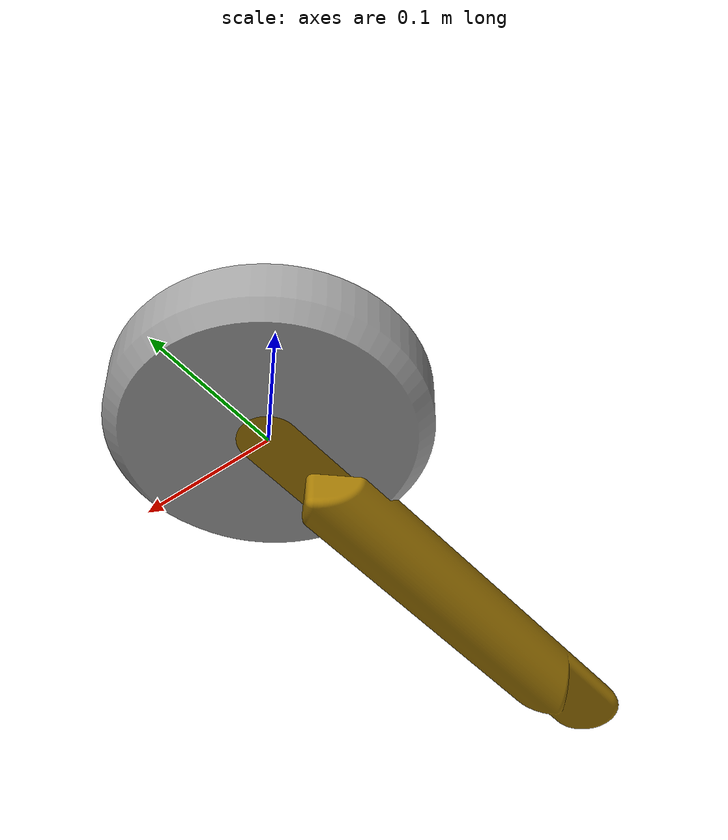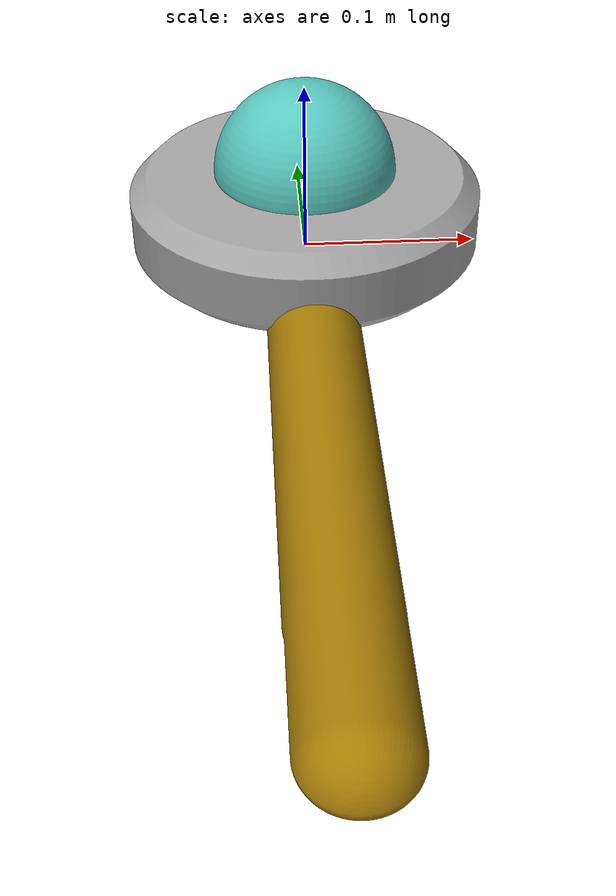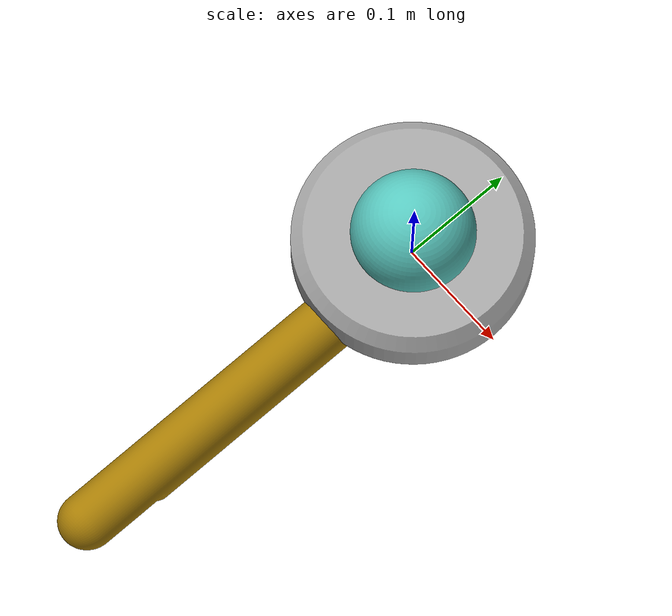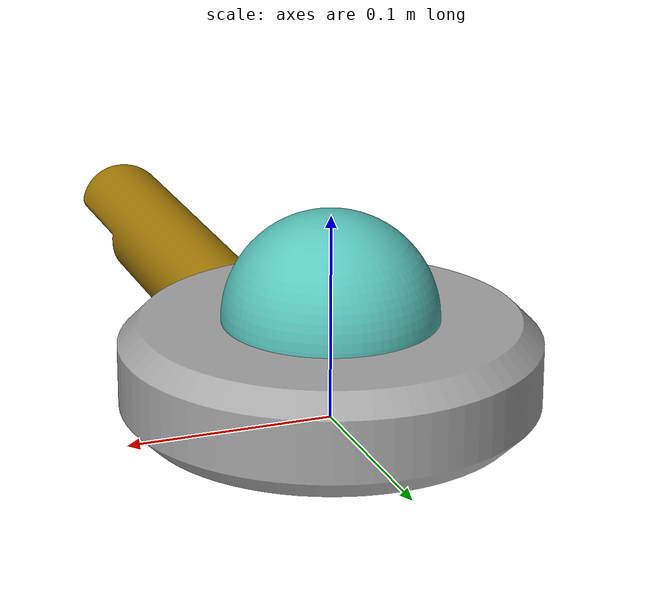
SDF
<sdf version="1.6">
<model name="onshape">
<link name="base">
<frame name="base_frame"><pose>0 0 0 0 -0 0</pose></frame>
<visual name="base_0_led_base_visual">
<pose>-0.703866 0.219658 -1.38778e-16 -1.40931e-32 1.5708 0</pose>
<geometry>
<mesh><uri>file://led_base.stl</uri></mesh>
</geometry>
<material><ambient>0.65098 0.486275 0.0196078 1</ambient><diffuse>0.65098 0.486275 0.0196078 1</diffuse><specular>0.1 0.1 0.1 1</specular><emissive>0 0 0 0</emissive></material>
</visual>
<collision name="base_0_led_base_visual">
<pose>-0.703866 0.219658 -1.38778e-16 -1.40931e-32 1.5708 0</pose>
<geometry>
<mesh><uri>file://test2//led_base.stl</uri></mesh>
</geometry>
</collision>
<visual name="base_1_base_visual">
<pose>0 -6.93889e-18 -0.299974 0 -0 0</pose>
<geometry>
<mesh><uri>file://base.stl</uri></mesh>
</geometry>
<material><ambient>0.647059 0.647059 0.647059 1</ambient><diffuse>0.647059 0.647059 0.647059 1</diffuse><specular>0.1 0.1 0.1 1</specular><emissive>0 0 0 0</emissive></material>
</visual>
<collision name="base_1_base_visual">
<pose>0 -6.93889e-18 -0.299974 0 -0 0</pose>
<geometry>
<mesh><uri>file://test2//base.stl</uri></mesh>
</geometry>
</collision>
<visual name="base_2_kamera_visual">
<pose>-2.15175e-07 -0.37778 -0.799974 0 -0 0</pose>
<geometry>
<mesh><uri>file://kamera.stl</uri></mesh>
</geometry>
<material><ambient>0.341176 0.776471 0.741176 1</ambient><diffuse>0.341176 0.776471 0.741176 1</diffuse><specular>0.1 0.1 0.1 1</specular><emissive>0 0 0 0</emissive></material>
</visual>
<collision name="base_2_kamera_visual">
<pose>-2.15175e-07 -0.37778 -0.799974 0 -0 0</pose>
<geometry>
<mesh><uri>file://test2//kamera.stl</uri></mesh>
</geometry>
</collision>
<inertial>
<pose frame="base_frame">0 0 0 0 0 0</pose>
<mass>0</mass>
<inertia><ixx>0</ixx><ixy>0</ixy><ixz>0</ixz><iyy>0</iyy><iyz>0</iyz><izz>0</izz></inertia>
</inertial>
</link>

</model>
</sdf>
